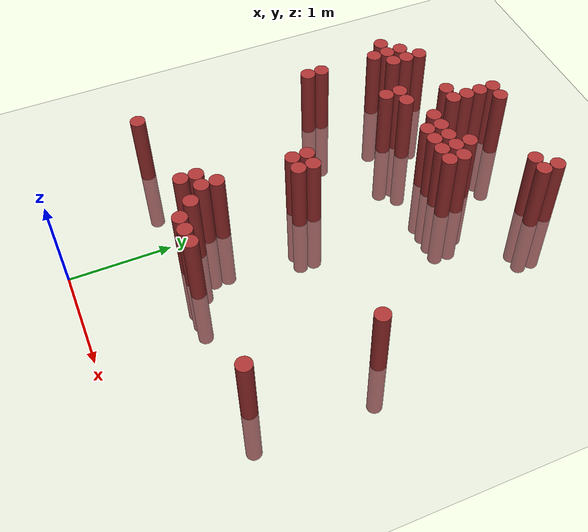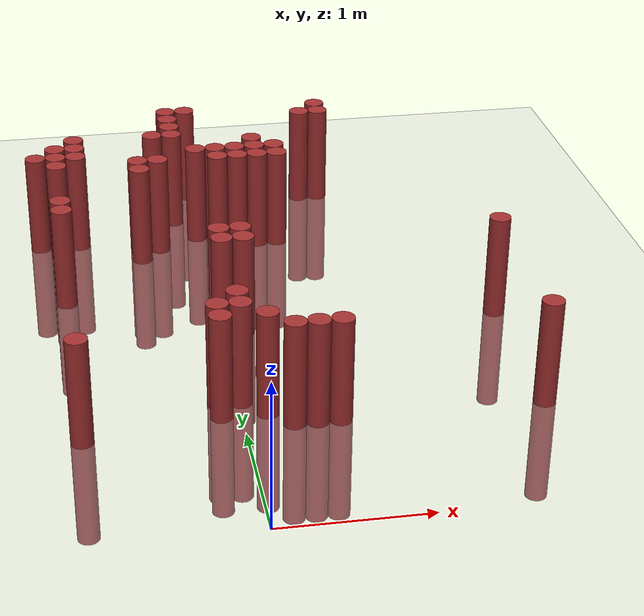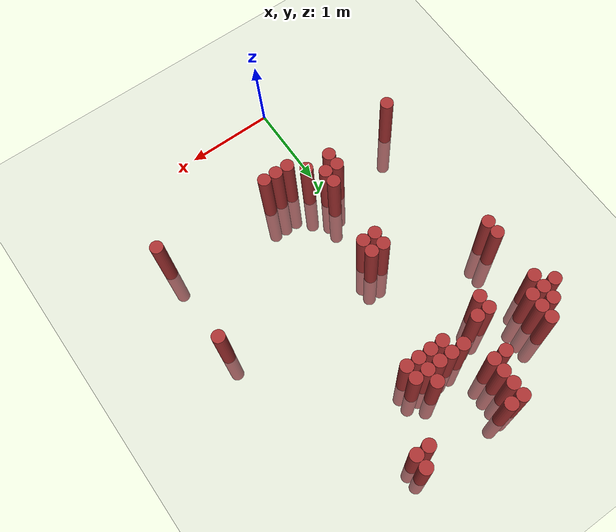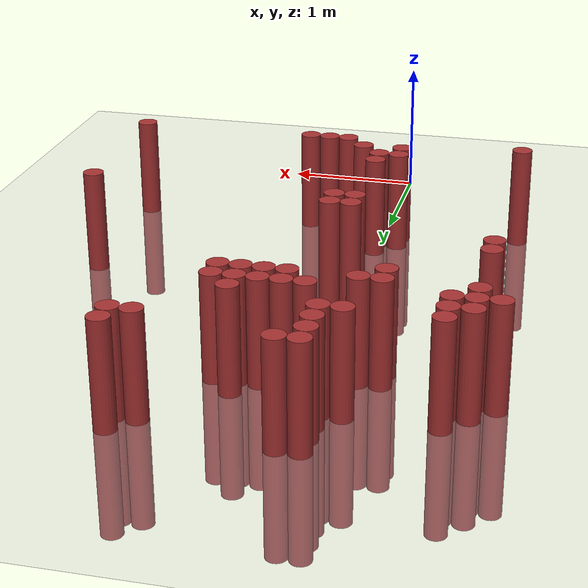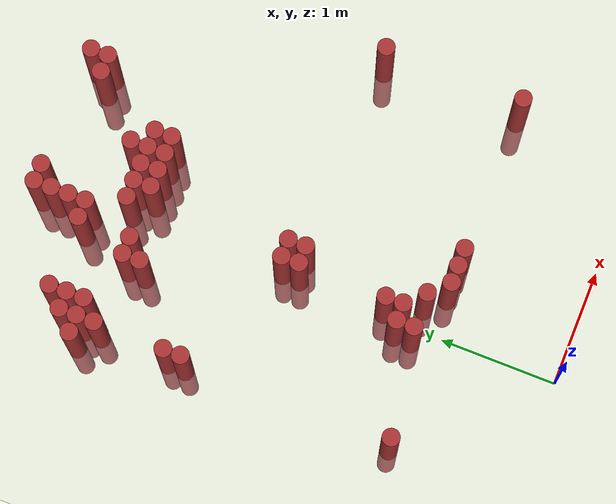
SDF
<sdf version="1.6">
 <world name="default">
  <model name="ground_plane">
   <static>1</static>
   <link name="link">
    <collision name="collision">
     <geometry><plane><normal>0 0 1</normal><size>100 100</size></plane></geometry>
     <surface><friction><ode><mu>100</mu><mu2>50</mu2></ode></friction></surface>
    </collision>
    <visual name="visual">
     <cast_shadows>0</cast_shadows>
     <geometry><plane><normal>0 0 1</normal><size>100 100</size></plane></geometry>
     <material>
      <script><uri>file://media/materials/scripts/gazebo.material</uri><name>Gazebo/Grey</name></script>
     </material>
    </visual>
   </link>
  </model>
  <model name="unit_cylinder_160">
   <static>1</static>
   <pose>-1.175000 3.775000 0.000000 0.000000 0.000000 0.000000</pose>
   <link name="link">
    <inertial>
     <mass>1</mass>
     <inertia><ixx>0.145833</ixx><ixy>0</ixy><ixz>0</ixz><iyy>0.145833</iyy><iyz>0</iyz><izz>0.125</izz></inertia>
    </inertial>
    <collision name="collision">
     <geometry><cylinder><radius>0.075000</radius><length>1.5</length></cylinder></geometry>
    </collision>
    <visual name="visual">
     <geometry><cylinder><radius>0.075000</radius><length>1.5</length></cylinder></geometry>
     <material>
      <ambient>0.648000 0.192000 0.192000 1</ambient>
      <diffuse>0.648000 0.192000 0.192000 1</diffuse>
     </material>
     <material>
      <script><name>Gazebo/Grey</name><uri>file://media/materials/scripts/gazebo.material</uri></script>
     </material>
    </visual>
   </link>
  </model>
  <model name="unit_cylinder_164">
   <static>1</static>
   <pose>-1.025000 1.075000 0.000000 0.000000 0.000000 0.000000</pose>
   <link name="link">
    <inertial>
     <mass>1</mass>
     <inertia><ixx>0.145833</ixx><ixy>0</ixy><ixz>0</ixz><iyy>0.145833</iyy><iyz>0</iyz><izz>0.125</izz></inertia>
    </inertial>
    <collision name="collision">
     <geometry><cylinder><radius>0.075000</radius><length>1.5</length></cylinder></geometry>
    </collision>
    <visual name="visual">
     <geometry><cylinder><radius>0.075000</radius><length>1.5</length></cylinder></geometry>
     <material>
      <ambient>0.648000 0.192000 0.192000 1</ambient>
      <diffuse>0.648000 0.192000 0.192000 1</diffuse>
     </material>
     <material>
      <script><name>Gazebo/Grey</name><uri>file://media/materials/scripts/gazebo.material</uri></script>
     </material>
    </visual>
   </link>
  </model>
  <model name="unit_cylinder_165">
   <static>1</static>
   <pose>-1.025000 2.875000 0.000000 0.000000 0.000000 0.000000</pose>
   <link name="link">
    <inertial>
     <mass>1</mass>
     <inertia><ixx>0.145833</ixx><ixy>0</ixy><ixz>0</ixz><iyy>0.145833</iyy><iyz>0</iyz><izz>0.125</izz></inertia>
    </inertial>
    <collision name="collision">
     <geometry><cylinder><radius>0.075000</radius><length>1.5</length></cylinder></geometry>
    </collision>
    <visual name="visual">
     <geometry><cylinder><radius>0.075000</radius><length>1.5</length></cylinder></geometry>
     <material>
      <ambient>0.648000 0.192000 0.192000 1</ambient>
      <diffuse>0.648000 0.192000 0.192000 1</diffuse>
     </material>
     <material>
      <script><name>Gazebo/Grey</name><uri>file://media/materials/scripts/gazebo.material</uri></script>
     </material>
    </visual>
   </link>
  </model>
  <model name="unit_cylinder_166">
   <static>1</static>
   <pose>-1.025000 3.025000 0.000000 0.000000 0.000000 0.000000</pose>
   <link name="link">
    <inertial>
     <mass>1</mass>
     <inertia><ixx>0.145833</ixx><ixy>0</ixy><ixz>0</ixz><iyy>0.145833</iyy><iyz>0</iyz><izz>0.125</izz></inertia>
    </inertial>
    <collision name="collision">
     <geometry><cylinder><radius>0.075000</radius><length>1.5</length></cylinder></geometry>
    </collision>
    <visual name="visual">
     <geometry><cylinder><radius>0.075000</radius><length>1.5</length></cylinder></geometry>
     <material>
      <ambient>0.648000 0.192000 0.192000 1</ambient>
      <diffuse>0.648000 0.192000 0.192000 1</diffuse>
     </material>
     <material>
      <script><name>Gazebo/Grey</name><uri>file://media/materials/scripts/gazebo.material</uri></script>
     </material>
    </visual>
   </link>
  </model>
  <model name="unit_cylinder_167">
   <static>1</static>
   <pose>-1.025000 3.625000 0.000000 0.000000 0.000000 0.000000</pose>
   <link name="link">
    <inertial>
     <mass>1</mass>
     <inertia><ixx>0.145833</ixx><ixy>0</ixy><ixz>0</ixz><iyy>0.145833</iyy><iyz>0</iyz><izz>0.125</izz></inertia>
    </inertial>
    <collision name="collision">
     <geometry><cylinder><radius>0.075000</radius><length>1.5</length></cylinder></geometry>
    </collision>
    <visual name="visual">
     <geometry><cylinder><radius>0.075000</radius><length>1.5</length></cylinder></geometry>
     <material>
      <ambient>0.648000 0.192000 0.192000 1</ambient>
      <diffuse>0.648000 0.192000 0.192000 1</diffuse>
     </material>
     <material>
      <script><name>Gazebo/Grey</name><uri>file://media/materials/scripts/gazebo.material</uri></script>
     </material>
    </visual>
   </link>
  </model>
  <model name="unit_cylinder_168">
   <static>1</static>
   <pose>-1.025000 3.775000 0.000000 0.000000 0.000000 0.000000</pose>
   <link name="link">
    <inertial>
     <mass>1</mass>
     <inertia><ixx>0.145833</ixx><ixy>0</ixy><ixz>0</ixz><iyy>0.145833</iyy><iyz>0</iyz><izz>0.125</izz></inertia>
    </inertial>
    <collision name="collision">
     <geometry><cylinder><radius>0.075000</radius><length>1.5</length></cylinder></geometry>
    </collision>
    <visual name="visual">
     <geometry><cylinder><radius>0.075000</radius><length>1.5</length></cylinder></geometry>
     <material>
      <ambient>0.648000 0.192000 0.192000 1</ambient>
      <diffuse>0.648000 0.192000 0.192000 1</diffuse>
     </material>
     <material>
      <script><name>Gazebo/Grey</name><uri>file://media/materials/scripts/gazebo.material</uri></script>
     </material>
    </visual>
   </link>
  </model>
  <model name="unit_cylinder_169">
   <static>1</static>
   <pose>-1.025000 3.925000 0.000000 0.000000 0.000000 0.000000</pose>
   <link name="link">
    <inertial>
     <mass>1</mass>
     <inertia><ixx>0.145833</ixx><ixy>0</ixy><ixz>0</ixz><iyy>0.145833</iyy><iyz>0</iyz><izz>0.125</izz></inertia>
    </inertial>
    <collision name="collision">
     <geometry><cylinder><radius>0.075000</radius><length>1.5</length></cylinder></geometry>
    </collision>
    <visual name="visual">
     <geometry><cylinder><radius>0.075000</radius><length>1.5</length></cylinder></geometry>
     <material>
      <ambient>0.648000 0.192000 0.192000 1</ambient>
      <diffuse>0.648000 0.192000 0.192000 1</diffuse>
     </material>
     <material>
      <script><name>Gazebo/Grey</name><uri>file://media/materials/scripts/gazebo.material</uri></script>
     </material>
    </visual>
   </link>
  </model>
  <model name="unit_cylinder_173">
   <static>1</static>
   <pose>-0.875000 3.775000 0.000000 0.000000 0.000000 0.000000</pose>
   <link name="link">
    <inertial>
     <mass>1</mass>
     <inertia><ixx>0.145833</ixx><ixy>0</ixy><ixz>0</ixz><iyy>0.145833</iyy><iyz>0</iyz><izz>0.125</izz></inertia>
    </inertial>
    <collision name="collision">
     <geometry><cylinder><radius>0.075000</radius><length>1.5</length></cylinder></geometry>
    </collision>
    <visual name="visual">
     <geometry><cylinder><radius>0.075000</radius><length>1.5</length></cylinder></geometry>
     <material>
      <ambient>0.648000 0.192000 0.192000 1</ambient>
      <diffuse>0.648000 0.192000 0.192000 1</diffuse>
     </material>
     <material>
      <script><name>Gazebo/Grey</name><uri>file://media/materials/scripts/gazebo.material</uri></script>
     </material>
    </visual>
   </link>
  </model>
  <model name="unit_cylinder_174">
   <static>1</static>
   <pose>-0.875000 3.925000 0.000000 0.000000 0.000000 0.000000</pose>
   <link name="link">
    <inertial>
     <mass>1</mass>
     <inertia><ixx>0.145833</ixx><ixy>0</ixy><ixz>0</ixz><iyy>0.145833</iyy><iyz>0</iyz><izz>0.125</izz></inertia>
    </inertial>
    <collision name="collision">
     <geometry><cylinder><radius>0.075000</radius><length>1.5</length></cylinder></geometry>
    </collision>
    <visual name="visual">
     <geometry><cylinder><radius>0.075000</radius><length>1.5</length></cylinder></geometry>
     <material>
      <ambient>0.648000 0.192000 0.192000 1</ambient>
      <diffuse>0.648000 0.192000 0.192000 1</diffuse>
     </material>
     <material>
      <script><name>Gazebo/Grey</name><uri>file://media/materials/scripts/gazebo.material</uri></script>
     </material>
    </visual>
   </link>
  </model>
  <model name="unit_cylinder_175">
   <static>1</static>
   <pose>-0.875000 4.075000 0.000000 0.000000 0.000000 0.000000</pose>
   <link name="link">
    <inertial>
     <mass>1</mass>
     <inertia><ixx>0.145833</ixx><ixy>0</ixy><ixz>0</ixz><iyy>0.145833</iyy><iyz>0</iyz><izz>0.125</izz></inertia>
    </inertial>
    <collision name="collision">
     <geometry><cylinder><radius>0.075000</radius><length>1.5</length></cylinder></geometry>
    </collision>
    <visual name="visual">
     <geometry><cylinder><radius>0.075000</radius><length>1.5</length></cylinder></geometry>
     <material>
      <ambient>0.648000 0.192000 0.192000 1</ambient>
      <diffuse>0.648000 0.192000 0.192000 1</diffuse>
     </material>
     <material>
      <script><name>Gazebo/Grey</name><uri>file://media/materials/scripts/gazebo.material</uri></script>
     </material>
    </visual>
   </link>
  </model>
  <model name="unit_cylinder_182">
   <static>1</static>
   <pose>-0.425000 3.475000 0.000000 0.000000 0.000000 0.000000</pose>
   <link name="link">
    <inertial>
     <mass>1</mass>
     <inertia><ixx>0.145833</ixx><ixy>0</ixy><ixz>0</ixz><iyy>0.145833</iyy><iyz>0</iyz><izz>0.125</izz></inertia>
    </inertial>
    <collision name="collision">
     <geometry><cylinder><radius>0.075000</radius><length>1.5</length></cylinder></geometry>
    </collision>
    <visual name="visual">
     <geometry><cylinder><radius>0.075000</radius><length>1.5</length></cylinder></geometry>
     <material>
      <ambient>0.648000 0.192000 0.192000 1</ambient>
      <diffuse>0.648000 0.192000 0.192000 1</diffuse>
     </material>
     <material>
      <script><name>Gazebo/Grey</name><uri>file://media/materials/scripts/gazebo.material</uri></script>
     </material>
    </visual>
   </link>
  </model>
  <model name="unit_cylinder_183">
   <static>1</static>
   <pose>-0.425000 3.625000 0.000000 0.000000 0.000000 0.000000</pose>
   <link name="link">
    <inertial>
     <mass>1</mass>
     <inertia><ixx>0.145833</ixx><ixy>0</ixy><ixz>0</ixz><iyy>0.145833</iyy><iyz>0</iyz><izz>0.125</izz></inertia>
    </inertial>
    <collision name="collision">
     <geometry><cylinder><radius>0.075000</radius><length>1.5</length></cylinder></geometry>
    </collision>
    <visual name="visual">
     <geometry><cylinder><radius>0.075000</radius><length>1.5</length></cylinder></geometry>
     <material>
      <ambient>0.648000 0.192000 0.192000 1</ambient>
      <diffuse>0.648000 0.192000 0.192000 1</diffuse>
     </material>
     <material>
      <script><name>Gazebo/Grey</name><uri>file://media/materials/scripts/gazebo.material</uri></script>
     </material>
    </visual>
   </link>
  </model>
  <model name="unit_cylinder_184">
   <static>1</static>
   <pose>-0.275000 3.625000 0.000000 0.000000 0.000000 0.000000</pose>
   <link name="link">
    <inertial>
     <mass>1</mass>
     <inertia><ixx>0.145833</ixx><ixy>0</ixy><ixz>0</ixz><iyy>0.145833</iyy><iyz>0</iyz><izz>0.125</izz></inertia>
    </inertial>
    <collision name="collision">
     <geometry><cylinder><radius>0.075000</radius><length>1.5</length></cylinder></geometry>
    </collision>
    <visual name="visual">
     <geometry><cylinder><radius>0.075000</radius><length>1.5</length></cylinder></geometry>
     <material>
      <ambient>0.648000 0.192000 0.192000 1</ambient>
      <diffuse>0.648000 0.192000 0.192000 1</diffuse>
     </material>
     <material>
      <script><name>Gazebo/Grey</name><uri>file://media/materials/scripts/gazebo.material</uri></script>
     </material>
    </visual>
   </link>
  </model>
  <model name="unit_cylinder_185">
   <static>1</static>
   <pose>-0.275000 4.075000 0.000000 0.000000 0.000000 0.000000</pose>
   <link name="link">
    <inertial>
     <mass>1</mass>
     <inertia><ixx>0.145833</ixx><ixy>0</ixy><ixz>0</ixz><iyy>0.145833</iyy><iyz>0</iyz><izz>0.125</izz></inertia>
    </inertial>
    <collision name="collision">
     <geometry><cylinder><radius>0.075000</radius><length>1.5</length></cylinder></geometry>
    </collision>
    <visual name="visual">
     <geometry><cylinder><radius>0.075000</radius><length>1.5</length></cylinder></geometry>
     <material>
      <ambient>0.648000 0.192000 0.192000 1</ambient>
      <diffuse>0.648000 0.192000 0.192000 1</diffuse>
     </material>
     <material>
      <script><name>Gazebo/Grey</name><uri>file://media/materials/scripts/gazebo.material</uri></script>
     </material>
    </visual>
   </link>
  </model>
  <model name="unit_cylinder_186">
   <static>1</static>
   <pose>-0.125000 1.225000 0.000000 0.000000 0.000000 0.000000</pose>
   <link name="link">
    <inertial>
     <mass>1</mass>
     <inertia><ixx>0.145833</ixx><ixy>0</ixy><ixz>0</ixz><iyy>0.145833</iyy><iyz>0</iyz><izz>0.125</izz></inertia>
    </inertial>
    <collision name="collision">
     <geometry><cylinder><radius>0.075000</radius><length>1.5</length></cylinder></geometry>
    </collision>
    <visual name="visual">
     <geometry><cylinder><radius>0.075000</radius><length>1.5</length></cylinder></geometry>
     <material>
      <ambient>0.648000 0.192000 0.192000 1</ambient>
      <diffuse>0.648000 0.192000 0.192000 1</diffuse>
     </material>
     <material>
      <script><name>Gazebo/Grey</name><uri>file://media/materials/scripts/gazebo.material</uri></script>
     </material>
    </visual>
   </link>
  </model>
  <model name="unit_cylinder_187">
   <static>1</static>
   <pose>-0.125000 1.375000 0.000000 0.000000 0.000000 0.000000</pose>
   <link name="link">
    <inertial>
     <mass>1</mass>
     <inertia><ixx>0.145833</ixx><ixy>0</ixy><ixz>0</ixz><iyy>0.145833</iyy><iyz>0</iyz><izz>0.125</izz></inertia>
    </inertial>
    <collision name="collision">
     <geometry><cylinder><radius>0.075000</radius><length>1.5</length></cylinder></geometry>
    </collision>
    <visual name="visual">
     <geometry><cylinder><radius>0.075000</radius><length>1.5</length></cylinder></geometry>
     <material>
      <ambient>0.648000 0.192000 0.192000 1</ambient>
      <diffuse>0.648000 0.192000 0.192000 1</diffuse>
     </material>
     <material>
      <script><name>Gazebo/Grey</name><uri>file://media/materials/scripts/gazebo.material</uri></script>
     </material>
    </visual>
   </link>
  </model>
  <model name="unit_cylinder_188">
   <static>1</static>
   <pose>-0.125000 4.075000 0.000000 0.000000 0.000000 0.000000</pose>
   <link name="link">
    <inertial>
     <mass>1</mass>
     <inertia><ixx>0.145833</ixx><ixy>0</ixy><ixz>0</ixz><iyy>0.145833</iyy><iyz>0</iyz><izz>0.125</izz></inertia>
    </inertial>
    <collision name="collision">
     <geometry><cylinder><radius>0.075000</radius><length>1.5</length></cylinder></geometry>
    </collision>
    <visual name="visual">
     <geometry><cylinder><radius>0.075000</radius><length>1.5</length></cylinder></geometry>
     <material>
      <ambient>0.648000 0.192000 0.192000 1</ambient>
      <diffuse>0.648000 0.192000 0.192000 1</diffuse>
     </material>
     <material>
      <script><name>Gazebo/Grey</name><uri>file://media/materials/scripts/gazebo.material</uri></script>
     </material>
    </visual>
   </link>
  </model>
  <model name="unit_cylinder_189">
   <static>1</static>
   <pose>-0.125000 4.225000 0.000000 0.000000 0.000000 0.000000</pose>
   <link name="link">
    <inertial>
     <mass>1</mass>
     <inertia><ixx>0.145833</ixx><ixy>0</ixy><ixz>0</ixz><iyy>0.145833</iyy><iyz>0</iyz><izz>0.125</izz></inertia>
    </inertial>
    <collision name="collision">
     <geometry><cylinder><radius>0.075000</radius><length>1.5</length></cylinder></geometry>
    </collision>
    <visual name="visual">
     <geometry><cylinder><radius>0.075000</radius><length>1.5</length></cylinder></geometry>
     <material>
      <ambient>0.648000 0.192000 0.192000 1</ambient>
      <diffuse>0.648000 0.192000 0.192000 1</diffuse>
     </material>
     <material>
      <script><name>Gazebo/Grey</name><uri>file://media/materials/scripts/gazebo.material</uri></script>
     </material>
    </visual>
   </link>
  </model>
  <model name="unit_cylinder_190">
   <static>1</static>
   <pose>-0.125000 4.375000 0.000000 0.000000 0.000000 0.000000</pose>
   <link name="link">
    <inertial>
     <mass>1</mass>
     <inertia><ixx>0.145833</ixx><ixy>0</ixy><ixz>0</ixz><iyy>0.145833</iyy><iyz>0</iyz><izz>0.125</izz></inertia>
    </inertial>
    <collision name="collision">
     <geometry><cylinder><radius>0.075000</radius><length>1.5</length></cylinder></geometry>
    </collision>
    <visual name="visual">
     <geometry><cylinder><radius>0.075000</radius><length>1.5</length></cylinder></geometry>
     <material>
      <ambient>0.648000 0.192000 0.192000 1</ambient>
      <diffuse>0.648000 0.192000 0.192000 1</diffuse>
     </material>
     <material>
      <script><name>Gazebo/Grey</name><uri>file://media/materials/scripts/gazebo.material</uri></script>
     </material>
    </visual>
   </link>
  </model>
  <model name="unit_cylinder_191">
   <static>1</static>
   <pose>-0.125000 4.525000 0.000000 0.000000 0.000000 0.000000</pose>
   <link name="link">
    <inertial>
     <mass>1</mass>
     <inertia><ixx>0.145833</ixx><ixy>0</ixy><ixz>0</ixz><iyy>0.145833</iyy><iyz>0</iyz><izz>0.125</izz></inertia>
    </inertial>
    <collision name="collision">
     <geometry><cylinder><radius>0.075000</radius><length>1.5</length></cylinder></geometry>
    </collision>
    <visual name="visual">
     <geometry><cylinder><radius>0.075000</radius><length>1.5</length></cylinder></geometry>
     <material>
      <ambient>0.648000 0.192000 0.192000 1</ambient>
      <diffuse>0.648000 0.192000 0.192000 1</diffuse>
     </material>
     <material>
      <script><name>Gazebo/Grey</name><uri>file://media/materials/scripts/gazebo.material</uri></script>
     </material>
    </visual>
   </link>
  </model>
  <model name="unit_cylinder_192">
   <static>1</static>
   <pose>0.025000 1.375000 0.000000 0.000000 0.000000 0.000000</pose>
   <link name="link">
    <inertial>
     <mass>1</mass>
     <inertia><ixx>0.145833</ixx><ixy>0</ixy><ixz>0</ixz><iyy>0.145833</iyy><iyz>0</iyz><izz>0.125</izz></inertia>
    </inertial>
    <collision name="collision">
     <geometry><cylinder><radius>0.075000</radius><length>1.5</length></cylinder></geometry>
    </collision>
    <visual name="visual">
     <geometry><cylinder><radius>0.075000</radius><length>1.5</length></cylinder></geometry>
     <material>
      <ambient>0.648000 0.192000 0.192000 1</ambient>
      <diffuse>0.648000 0.192000 0.192000 1</diffuse>
     </material>
     <material>
      <script><name>Gazebo/Grey</name><uri>file://media/materials/scripts/gazebo.material</uri></script>
     </material>
    </visual>
   </link>
  </model>
  <model name="unit_cylinder_193">
   <static>1</static>
   <pose>0.025000 1.525000 0.000000 0.000000 0.000000 0.000000</pose>
   <link name="link">
    <inertial>
     <mass>1</mass>
     <inertia><ixx>0.145833</ixx><ixy>0</ixy><ixz>0</ixz><iyy>0.145833</iyy><iyz>0</iyz><izz>0.125</izz></inertia>
    </inertial>
    <collision name="collision">
     <geometry><cylinder><radius>0.075000</radius><length>1.5</length></cylinder></geometry>
    </collision>
    <visual name="visual">
     <geometry><cylinder><radius>0.075000</radius><length>1.5</length></cylinder></geometry>
     <material>
      <ambient>0.648000 0.192000 0.192000 1</ambient>
      <diffuse>0.648000 0.192000 0.192000 1</diffuse>
     </material>
     <material>
      <script><name>Gazebo/Grey</name><uri>file://media/materials/scripts/gazebo.material</uri></script>
     </material>
    </visual>
   </link>
  </model>
  <model name="unit_cylinder_194">
   <static>1</static>
   <pose>0.025000 2.275000 0.000000 0.000000 0.000000 0.000000</pose>
   <link name="link">
    <inertial>
     <mass>1</mass>
     <inertia><ixx>0.145833</ixx><ixy>0</ixy><ixz>0</ixz><iyy>0.145833</iyy><iyz>0</iyz><izz>0.125</izz></inertia>
    </inertial>
    <collision name="collision">
     <geometry><cylinder><radius>0.075000</radius><length>1.5</length></cylinder></geometry>
    </collision>
    <visual name="visual">
     <geometry><cylinder><radius>0.075000</radius><length>1.5</length></cylinder></geometry>
     <material>
      <ambient>0.648000 0.192000 0.192000 1</ambient>
      <diffuse>0.648000 0.192000 0.192000 1</diffuse>
     </material>
     <material>
      <script><name>Gazebo/Grey</name><uri>file://media/materials/scripts/gazebo.material</uri></script>
     </material>
    </visual>
   </link>
  </model>
  <model name="unit_cylinder_195">
   <static>1</static>
   <pose>0.025000 2.425000 0.000000 0.000000 0.000000 0.000000</pose>
   <link name="link">
    <inertial>
     <mass>1</mass>
     <inertia><ixx>0.145833</ixx><ixy>0</ixy><ixz>0</ixz><iyy>0.145833</iyy><iyz>0</iyz><izz>0.125</izz></inertia>
    </inertial>
    <collision name="collision">
     <geometry><cylinder><radius>0.075000</radius><length>1.5</length></cylinder></geometry>
    </collision>
    <visual name="visual">
     <geometry><cylinder><radius>0.075000</radius><length>1.5</length></cylinder></geometry>
     <material>
      <ambient>0.648000 0.192000 0.192000 1</ambient>
      <diffuse>0.648000 0.192000 0.192000 1</diffuse>
     </material>
     <material>
      <script><name>Gazebo/Grey</name><uri>file://media/materials/scripts/gazebo.material</uri></script>
     </material>
    </visual>
   </link>
  </model>
  <model name="unit_cylinder_196">
   <static>1</static>
   <pose>0.025000 3.775000 0.000000 0.000000 0.000000 0.000000</pose>
   <link name="link">
    <inertial>
     <mass>1</mass>
     <inertia><ixx>0.145833</ixx><ixy>0</ixy><ixz>0</ixz><iyy>0.145833</iyy><iyz>0</iyz><izz>0.125</izz></inertia>
    </inertial>
    <collision name="collision">
     <geometry><cylinder><radius>0.075000</radius><length>1.5</length></cylinder></geometry>
    </collision>
    <visual name="visual">
     <geometry><cylinder><radius>0.075000</radius><length>1.5</length></cylinder></geometry>
     <material>
      <ambient>0.648000 0.192000 0.192000 1</ambient>
      <diffuse>0.648000 0.192000 0.192000 1</diffuse>
     </material>
     <material>
      <script><name>Gazebo/Grey</name><uri>file://media/materials/scripts/gazebo.material</uri></script>
     </material>
    </visual>
   </link>
  </model>
  <model name="unit_cylinder_197">
   <static>1</static>
   <pose>0.025000 4.525000 0.000000 0.000000 0.000000 0.000000</pose>
   <link name="link">
    <inertial>
     <mass>1</mass>
     <inertia><ixx>0.145833</ixx><ixy>0</ixy><ixz>0</ixz><iyy>0.145833</iyy><iyz>0</iyz><izz>0.125</izz></inertia>
    </inertial>
    <collision name="collision">
     <geometry><cylinder><radius>0.075000</radius><length>1.5</length></cylinder></geometry>
    </collision>
    <visual name="visual">
     <geometry><cylinder><radius>0.075000</radius><length>1.5</length></cylinder></geometry>
     <material>
      <ambient>0.648000 0.192000 0.192000 1</ambient>
      <diffuse>0.648000 0.192000 0.192000 1</diffuse>
     </material>
     <material>
      <script><name>Gazebo/Grey</name><uri>file://media/materials/scripts/gazebo.material</uri></script>
     </material>
    </visual>
   </link>
  </model>
  <model name="unit_cylinder_198">
   <static>1</static>
   <pose>0.175000 1.225000 0.000000 0.000000 0.000000 0.000000</pose>
   <link name="link">
    <inertial>
     <mass>1</mass>
     <inertia><ixx>0.145833</ixx><ixy>0</ixy><ixz>0</ixz><iyy>0.145833</iyy><iyz>0</iyz><izz>0.125</izz></inertia>
    </inertial>
    <collision name="collision">
     <geometry><cylinder><radius>0.075000</radius><length>1.5</length></cylinder></geometry>
    </collision>
    <visual name="visual">
     <geometry><cylinder><radius>0.075000</radius><length>1.5</length></cylinder></geometry>
     <material>
      <ambient>0.648000 0.192000 0.192000 1</ambient>
      <diffuse>0.648000 0.192000 0.192000 1</diffuse>
     </material>
     <material>
      <script><name>Gazebo/Grey</name><uri>file://media/materials/scripts/gazebo.material</uri></script>
     </material>
    </visual>
   </link>
  </model>
  <model name="unit_cylinder_199">
   <static>1</static>
   <pose>0.175000 2.275000 0.000000 0.000000 0.000000 0.000000</pose>
   <link name="link">
    <inertial>
     <mass>1</mass>
     <inertia><ixx>0.145833</ixx><ixy>0</ixy><ixz>0</ixz><iyy>0.145833</iyy><iyz>0</iyz><izz>0.125</izz></inertia>
    </inertial>
    <collision name="collision">
     <geometry><cylinder><radius>0.075000</radius><length>1.5</length></cylinder></geometry>
    </collision>
    <visual name="visual">
     <geometry><cylinder><radius>0.075000</radius><length>1.5</length></cylinder></geometry>
     <material>
      <ambient>0.648000 0.192000 0.192000 1</ambient>
      <diffuse>0.648000 0.192000 0.192000 1</diffuse>
     </material>
     <material>
      <script><name>Gazebo/Grey</name><uri>file://media/materials/scripts/gazebo.material</uri></script>
     </material>
    </visual>
   </link>
  </model>
  <model name="unit_cylinder_200">
   <static>1</static>
   <pose>0.175000 2.425000 0.000000 0.000000 0.000000 0.000000</pose>
   <link name="link">
    <inertial>
     <mass>1</mass>
     <inertia><ixx>0.145833</ixx><ixy>0</ixy><ixz>0</ixz><iyy>0.145833</iyy><iyz>0</iyz><izz>0.125</izz></inertia>
    </inertial>
    <collision name="collision">
     <geometry><cylinder><radius>0.075000</radius><length>1.5</length></cylinder></geometry>
    </collision>
    <visual name="visual">
     <geometry><cylinder><radius>0.075000</radius><length>1.5</length></cylinder></geometry>
     <material>
      <ambient>0.648000 0.192000 0.192000 1</ambient>
      <diffuse>0.648000 0.192000 0.192000 1</diffuse>
     </material>
     <material>
      <script><name>Gazebo/Grey</name><uri>file://media/materials/scripts/gazebo.material</uri></script>
     </material>
    </visual>
   </link>
  </model>
  <model name="unit_cylinder_201">
   <static>1</static>
   <pose>0.175000 3.625000 0.000000 0.000000 0.000000 0.000000</pose>
   <link name="link">
    <inertial>
     <mass>1</mass>
     <inertia><ixx>0.145833</ixx><ixy>0</ixy><ixz>0</ixz><iyy>0.145833</iyy><iyz>0</iyz><izz>0.125</izz></inertia>
    </inertial>
    <collision name="collision">
     <geometry><cylinder><radius>0.075000</radius><length>1.5</length></cylinder></geometry>
    </collision>
    <visual name="visual">
     <geometry><cylinder><radius>0.075000</radius><length>1.5</length></cylinder></geometry>
     <material>
      <ambient>0.648000 0.192000 0.192000 1</ambient>
      <diffuse>0.648000 0.192000 0.192000 1</diffuse>
     </material>
     <material>
      <script><name>Gazebo/Grey</name><uri>file://media/materials/scripts/gazebo.material</uri></script>
     </material>
    </visual>
   </link>
  </model>
  <model name="unit_cylinder_202">
   <static>1</static>
   <pose>0.175000 3.775000 0.000000 0.000000 0.000000 0.000000</pose>
   <link name="link">
    <inertial>
     <mass>1</mass>
     <inertia><ixx>0.145833</ixx><ixy>0</ixy><ixz>0</ixz><iyy>0.145833</iyy><iyz>0</iyz><izz>0.125</izz></inertia>
    </inertial>
    <collision name="collision">
     <geometry><cylinder><radius>0.075000</radius><length>1.5</length></cylinder></geometry>
    </collision>
    <visual name="visual">
     <geometry><cylinder><radius>0.075000</radius><length>1.5</length></cylinder></geometry>
     <material>
      <ambient>0.648000 0.192000 0.192000 1</ambient>
      <diffuse>0.648000 0.192000 0.192000 1</diffuse>
     </material>
     <material>
      <script><name>Gazebo/Grey</name><uri>file://media/materials/scripts/gazebo.material</uri></script>
     </material>
    </visual>
   </link>
  </model>
  <model name="unit_cylinder_204">
   <static>1</static>
   <pose>0.325000 1.075000 0.000000 0.000000 0.000000 0.000000</pose>
   <link name="link">
    <inertial>
     <mass>1</mass>
     <inertia><ixx>0.145833</ixx><ixy>0</ixy><ixz>0</ixz><iyy>0.145833</iyy><iyz>0</iyz><izz>0.125</izz></inertia>
    </inertial>
    <collision name="collision">
     <geometry><cylinder><radius>0.075000</radius><length>1.5</length></cylinder></geometry>
    </collision>
    <visual name="visual">
     <geometry><cylinder><radius>0.075000</radius><length>1.5</length></cylinder></geometry>
     <material>
      <ambient>0.648000 0.192000 0.192000 1</ambient>
      <diffuse>0.648000 0.192000 0.192000 1</diffuse>
     </material>
     <material>
      <script><name>Gazebo/Grey</name><uri>file://media/materials/scripts/gazebo.material</uri></script>
     </material>
    </visual>
   </link>
  </model>
  <model name="unit_cylinder_205">
   <static>1</static>
   <pose>0.325000 3.625000 0.000000 0.000000 0.000000 0.000000</pose>
   <link name="link">
    <inertial>
     <mass>1</mass>
     <inertia><ixx>0.145833</ixx><ixy>0</ixy><ixz>0</ixz><iyy>0.145833</iyy><iyz>0</iyz><izz>0.125</izz></inertia>
    </inertial>
    <collision name="collision">
     <geometry><cylinder><radius>0.075000</radius><length>1.5</length></cylinder></geometry>
    </collision>
    <visual name="visual">
     <geometry><cylinder><radius>0.075000</radius><length>1.5</length></cylinder></geometry>
     <material>
      <ambient>0.648000 0.192000 0.192000 1</ambient>
      <diffuse>0.648000 0.192000 0.192000 1</diffuse>
     </material>
     <material>
      <script><name>Gazebo/Grey</name><uri>file://media/materials/scripts/gazebo.material</uri></script>
     </material>
    </visual>
   </link>
  </model>
  <model name="unit_cylinder_206">
   <static>1</static>
   <pose>0.325000 3.775000 0.000000 0.000000 0.000000 0.000000</pose>
   <link name="link">
    <inertial>
     <mass>1</mass>
     <inertia><ixx>0.145833</ixx><ixy>0</ixy><ixz>0</ixz><iyy>0.145833</iyy><iyz>0</iyz><izz>0.125</izz></inertia>
    </inertial>
    <collision name="collision">
     <geometry><cylinder><radius>0.075000</radius><length>1.5</length></cylinder></geometry>
    </collision>
    <visual name="visual">
     <geometry><cylinder><radius>0.075000</radius><length>1.5</length></cylinder></geometry>
     <material>
      <ambient>0.648000 0.192000 0.192000 1</ambient>
      <diffuse>0.648000 0.192000 0.192000 1</diffuse>
     </material>
     <material>
      <script><name>Gazebo/Grey</name><uri>file://media/materials/scripts/gazebo.material</uri></script>
     </material>
    </visual>
   </link>
  </model>
  <model name="unit_cylinder_208">
   <static>1</static>
   <pose>0.475000 1.075000 0.000000 0.000000 0.000000 0.000000</pose>
   <link name="link">
    <inertial>
     <mass>1</mass>
     <inertia><ixx>0.145833</ixx><ixy>0</ixy><ixz>0</ixz><iyy>0.145833</iyy><iyz>0</iyz><izz>0.125</izz></inertia>
    </inertial>
    <collision name="collision">
     <geometry><cylinder><radius>0.075000</radius><length>1.5</length></cylinder></geometry>
    </collision>
    <visual name="visual">
     <geometry><cylinder><radius>0.075000</radius><length>1.5</length></cylinder></geometry>
     <material>
      <ambient>0.648000 0.192000 0.192000 1</ambient>
      <diffuse>0.648000 0.192000 0.192000 1</diffuse>
     </material>
     <material>
      <script><name>Gazebo/Grey</name><uri>file://media/materials/scripts/gazebo.material</uri></script>
     </material>
    </visual>
   </link>
  </model>
  <model name="unit_cylinder_209">
   <static>1</static>
   <pose>0.475000 3.625000 0.000000 0.000000 0.000000 0.000000</pose>
   <link name="link">
    <inertial>
     <mass>1</mass>
     <inertia><ixx>0.145833</ixx><ixy>0</ixy><ixz>0</ixz><iyy>0.145833</iyy><iyz>0</iyz><izz>0.125</izz></inertia>
    </inertial>
    <collision name="collision">
     <geometry><cylinder><radius>0.075000</radius><length>1.5</length></cylinder></geometry>
    </collision>
    <visual name="visual">
     <geometry><cylinder><radius>0.075000</radius><length>1.5</length></cylinder></geometry>
     <material>
      <ambient>0.648000 0.192000 0.192000 1</ambient>
      <diffuse>0.648000 0.192000 0.192000 1</diffuse>
     </material>
     <material>
      <script><name>Gazebo/Grey</name><uri>file://media/materials/scripts/gazebo.material</uri></script>
     </material>
    </visual>
   </link>
  </model>
  <model name="unit_cylinder_210">
   <static>1</static>
   <pose>0.475000 3.775000 0.000000 0.000000 0.000000 0.000000</pose>
   <link name="link">
    <inertial>
     <mass>1</mass>
     <inertia><ixx>0.145833</ixx><ixy>0</ixy><ixz>0</ixz><iyy>0.145833</iyy><iyz>0</iyz><izz>0.125</izz></inertia>
    </inertial>
    <collision name="collision">
     <geometry><cylinder><radius>0.075000</radius><length>1.5</length></cylinder></geometry>
    </collision>
    <visual name="visual">
     <geometry><cylinder><radius>0.075000</radius><length>1.5</length></cylinder></geometry>
     <material>
      <ambient>0.648000 0.192000 0.192000 1</ambient>
      <diffuse>0.648000 0.192000 0.192000 1</diffuse>
     </material>
     <material>
      <script><name>Gazebo/Grey</name><uri>file://media/materials/scripts/gazebo.material</uri></script>
     </material>
    </visual>
   </link>
  </model>
  <model name="unit_cylinder_211">
   <static>1</static>
   <pose>0.475000 3.925000 0.000000 0.000000 0.000000 0.000000</pose>
   <link name="link">
    <inertial>
     <mass>1</mass>
     <inertia><ixx>0.145833</ixx><ixy>0</ixy><ixz>0</ixz><iyy>0.145833</iyy><iyz>0</iyz><izz>0.125</izz></inertia>
    </inertial>
    <collision name="collision">
     <geometry><cylinder><radius>0.075000</radius><length>1.5</length></cylinder></geometry>
    </collision>
    <visual name="visual">
     <geometry><cylinder><radius>0.075000</radius><length>1.5</length></cylinder></geometry>
     <material>
      <ambient>0.648000 0.192000 0.192000 1</ambient>
      <diffuse>0.648000 0.192000 0.192000 1</diffuse>
     </material>
     <material>
      <script><name>Gazebo/Grey</name><uri>file://media/materials/scripts/gazebo.material</uri></script>
     </material>
    </visual>
   </link>
  </model>
  <model name="unit_cylinder_213">
   <static>1</static>
   <pose>0.625000 1.075000 0.000000 0.000000 0.000000 0.000000</pose>
   <link name="link">
    <inertial>
     <mass>1</mass>
     <inertia><ixx>0.145833</ixx><ixy>0</ixy><ixz>0</ixz><iyy>0.145833</iyy><iyz>0</iyz><izz>0.125</izz></inertia>
    </inertial>
    <collision name="collision">
     <geometry><cylinder><radius>0.075000</radius><length>1.5</length></cylinder></geometry>
    </collision>
    <visual name="visual">
     <geometry><cylinder><radius>0.075000</radius><length>1.5</length></cylinder></geometry>
     <material>
      <ambient>0.648000 0.192000 0.192000 1</ambient>
      <diffuse>0.648000 0.192000 0.192000 1</diffuse>
     </material>
     <material>
      <script><name>Gazebo/Grey</name><uri>file://media/materials/scripts/gazebo.material</uri></script>
     </material>
    </visual>
   </link>
  </model>
  <model name="unit_cylinder_214">
   <static>1</static>
   <pose>0.625000 3.625000 0.000000 0.000000 0.000000 0.000000</pose>
   <link name="link">
    <inertial>
     <mass>1</mass>
     <inertia><ixx>0.145833</ixx><ixy>0</ixy><ixz>0</ixz><iyy>0.145833</iyy><iyz>0</iyz><izz>0.125</izz></inertia>
    </inertial>
    <collision name="collision">
     <geometry><cylinder><radius>0.075000</radius><length>1.5</length></cylinder></geometry>
    </collision>
    <visual name="visual">
     <geometry><cylinder><radius>0.075000</radius><length>1.5</length></cylinder></geometry>
     <material>
      <ambient>0.648000 0.192000 0.192000 1</ambient>
      <diffuse>0.648000 0.192000 0.192000 1</diffuse>
     </material>
     <material>
      <script><name>Gazebo/Grey</name><uri>file://media/materials/scripts/gazebo.material</uri></script>
     </material>
    </visual>
   </link>
  </model>
  <model name="unit_cylinder_215">
   <static>1</static>
   <pose>0.625000 3.775000 0.000000 0.000000 0.000000 0.000000</pose>
   <link name="link">
    <inertial>
     <mass>1</mass>
     <inertia><ixx>0.145833</ixx><ixy>0</ixy><ixz>0</ixz><iyy>0.145833</iyy><iyz>0</iyz><izz>0.125</izz></inertia>
    </inertial>
    <collision name="collision">
     <geometry><cylinder><radius>0.075000</radius><length>1.5</length></cylinder></geometry>
    </collision>
    <visual name="visual">
     <geometry><cylinder><radius>0.075000</radius><length>1.5</length></cylinder></geometry>
     <material>
      <ambient>0.648000 0.192000 0.192000 1</ambient>
      <diffuse>0.648000 0.192000 0.192000 1</diffuse>
     </material>
     <material>
      <script><name>Gazebo/Grey</name><uri>file://media/materials/scripts/gazebo.material</uri></script>
     </material>
    </visual>
   </link>
  </model>
  <model name="unit_cylinder_216">
   <static>1</static>
   <pose>0.925000 4.375000 0.000000 0.000000 0.000000 0.000000</pose>
   <link name="link">
    <inertial>
     <mass>1</mass>
     <inertia><ixx>0.145833</ixx><ixy>0</ixy><ixz>0</ixz><iyy>0.145833</iyy><iyz>0</iyz><izz>0.125</izz></inertia>
    </inertial>
    <collision name="collision">
     <geometry><cylinder><radius>0.075000</radius><length>1.5</length></cylinder></geometry>
    </collision>
    <visual name="visual">
     <geometry><cylinder><radius>0.075000</radius><length>1.5</length></cylinder></geometry>
     <material>
      <ambient>0.648000 0.192000 0.192000 1</ambient>
      <diffuse>0.648000 0.192000 0.192000 1</diffuse>
     </material>
     <material>
      <script><name>Gazebo/Grey</name><uri>file://media/materials/scripts/gazebo.material</uri></script>
     </material>
    </visual>
   </link>
  </model>
  <model name="unit_cylinder_217">
   <static>1</static>
   <pose>1.075000 4.375000 0.000000 0.000000 0.000000 0.000000</pose>
   <link name="link">
    <inertial>
     <mass>1</mass>
     <inertia><ixx>0.145833</ixx><ixy>0</ixy><ixz>0</ixz><iyy>0.145833</iyy><iyz>0</iyz><izz>0.125</izz></inertia>
    </inertial>
    <collision name="collision">
     <geometry><cylinder><radius>0.075000</radius><length>1.5</length></cylinder></geometry>
    </collision>
    <visual name="visual">
     <geometry><cylinder><radius>0.075000</radius><length>1.5</length></cylinder></geometry>
     <material>
      <ambient>0.648000 0.192000 0.192000 1</ambient>
      <diffuse>0.648000 0.192000 0.192000 1</diffuse>
     </material>
     <material>
      <script><name>Gazebo/Grey</name><uri>file://media/materials/scripts/gazebo.material</uri></script>
     </material>
    </visual>
   </link>
  </model>
  <model name="unit_cylinder_218">
   <static>1</static>
   <pose>1.075000 4.525000 0.000000 0.000000 0.000000 0.000000</pose>
   <link name="link">
    <inertial>
     <mass>1</mass>
     <inertia><ixx>0.145833</ixx><ixy>0</ixy><ixz>0</ixz><iyy>0.145833</iyy><iyz>0</iyz><izz>0.125</izz></inertia>
    </inertial>
    <collision name="collision">
     <geometry><cylinder><radius>0.075000</radius><length>1.5</length></cylinder></geometry>
    </collision>
    <visual name="visual">
     <geometry><cylinder><radius>0.075000</radius><length>1.5</length></cylinder></geometry>
     <material>
      <ambient>0.648000 0.192000 0.192000 1</ambient>
      <diffuse>0.648000 0.192000 0.192000 1</diffuse>
     </material>
     <material>
      <script><name>Gazebo/Grey</name><uri>file://media/materials/scripts/gazebo.material</uri></script>
     </material>
    </visual>
   </link>
  </model>
  <model name="unit_cylinder_221">
   <static>1</static>
   <pose>1.975000 1.075000 0.000000 0.000000 0.000000 0.000000</pose>
   <link name="link">
    <inertial>
     <mass>1</mass>
     <inertia><ixx>0.145833</ixx><ixy>0</ixy><ixz>0</ixz><iyy>0.145833</iyy><iyz>0</iyz><izz>0.125</izz></inertia>
    </inertial>
    <collision name="collision">
     <geometry><cylinder><radius>0.075000</radius><length>1.5</length></cylinder></geometry>
    </collision>
    <visual name="visual">
     <geometry><cylinder><radius>0.075000</radius><length>1.5</length></cylinder></geometry>
     <material>
      <ambient>0.648000 0.192000 0.192000 1</ambient>
      <diffuse>0.648000 0.192000 0.192000 1</diffuse>
     </material>
     <material>
      <script><name>Gazebo/Grey</name><uri>file://media/materials/scripts/gazebo.material</uri></script>
     </material>
    </visual>
   </link>
  </model>
  <model name="unit_cylinder_222">
   <static>1</static>
   <pose>1.975000 2.275000 0.000000 0.000000 0.000000 0.000000</pose>
   <link name="link">
    <inertial>
     <mass>1</mass>
     <inertia><ixx>0.145833</ixx><ixy>0</ixy><ixz>0</ixz><iyy>0.145833</iyy><iyz>0</iyz><izz>0.125</izz></inertia>
    </inertial>
    <collision name="collision">
     <geometry><cylinder><radius>0.075000</radius><length>1.5</length></cylinder></geometry>
    </collision>
    <visual name="visual">
     <geometry><cylinder><radius>0.075000</radius><length>1.5</length></cylinder></geometry>
     <material>
      <ambient>0.648000 0.192000 0.192000 1</ambient>
      <diffuse>0.648000 0.192000 0.192000 1</diffuse>
     </material>
     <material>
      <script><name>Gazebo/Grey</name><uri>file://media/materials/scripts/gazebo.material</uri></script>
     </material>
    </visual>
   </link>
  </model>
 </world>
</sdf>
